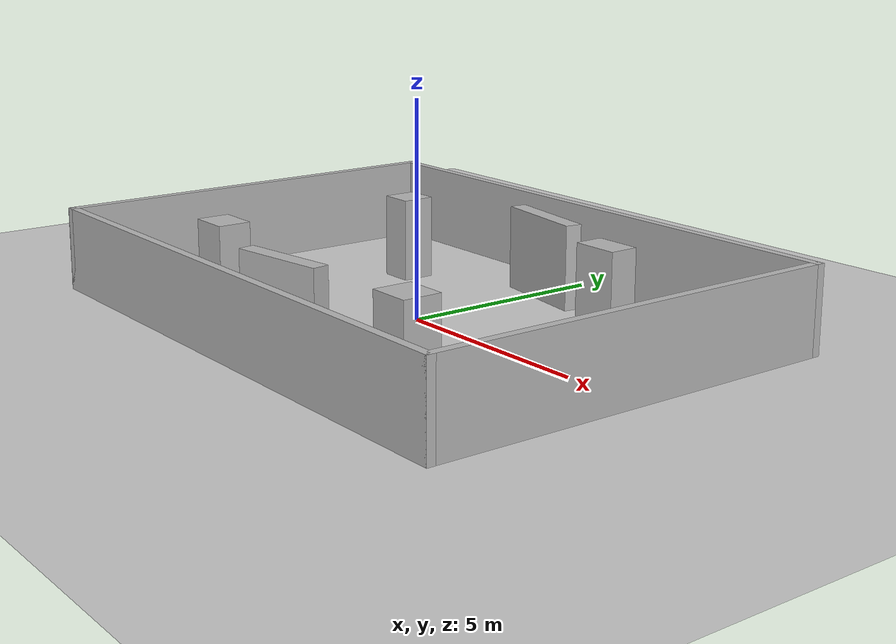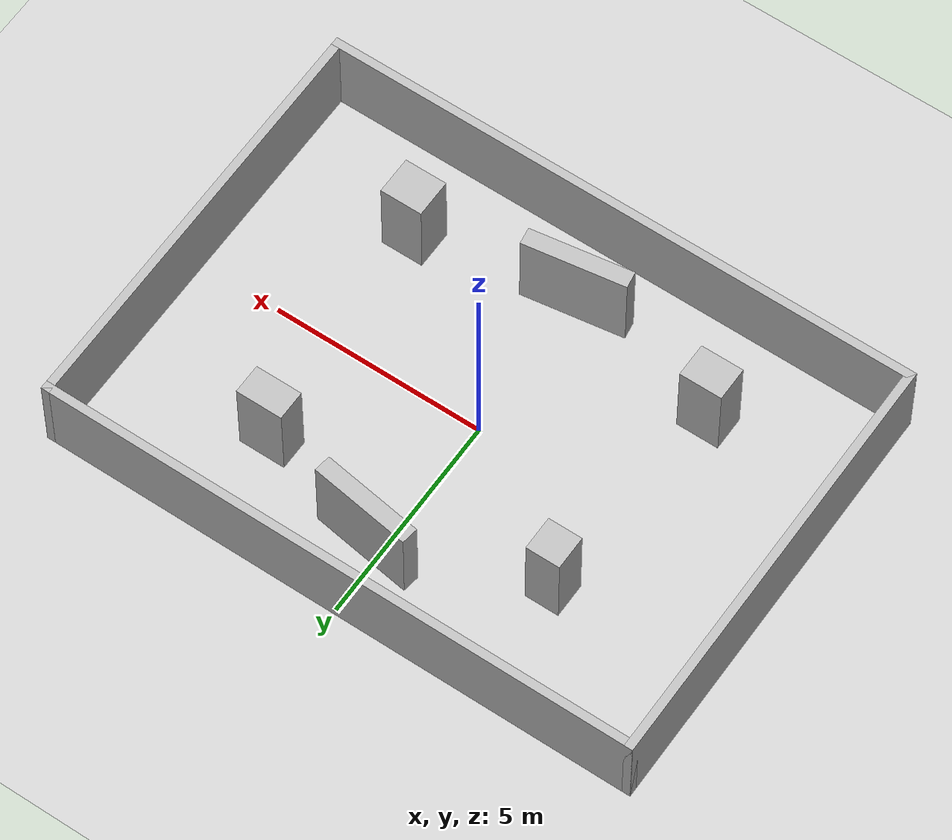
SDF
<sdf version='1.7'>
  <world name='mr3_confirmation_open'>
    <!-- mr3_box_layouts_v1; layout_seed=1103; eval-only. -->
    <plugin name='gazebo_ros_state' filename='libgazebo_ros_state.so'>
      <ros><namespace>/gazebo</namespace></ros><update_rate>10.0</update_rate>
    </plugin>
    <include><uri>model://sun</uri></include>
    <include><uri>model://ground_plane</uri></include>
    <gravity>0 0 -9.8</gravity><physics type='ode'>
      <max_step_size>0.001</max_step_size><real_time_factor>1</real_time_factor>
      <real_time_update_rate>1000</real_time_update_rate></physics>
    <model name='task_geometry'><static>true</static><link name='boxes'>
      <collision name='north'><pose>0.000000 5.000000 1 0 0 0.000000</pose>
        <geometry><box><size>14.200000 0.200000 2</size></box></geometry></collision>
      <visual name='north_visual'><pose>0.000000 5.000000 1 0 0 0.000000</pose>
        <geometry><box><size>14.200000 0.200000 2</size></box></geometry></visual>
      <collision name='south'><pose>0.000000 -5.000000 1 0 0 0.000000</pose>
        <geometry><box><size>14.200000 0.200000 2</size></box></geometry></collision>
      <visual name='south_visual'><pose>0.000000 -5.000000 1 0 0 0.000000</pose>
        <geometry><box><size>14.200000 0.200000 2</size></box></geometry></visual>
      <collision name='east'><pose>7.000000 0.000000 1 0 0 0.000000</pose>
        <geometry><box><size>0.200000 10.200000 2</size></box></geometry></collision>
      <visual name='east_visual'><pose>7.000000 0.000000 1 0 0 0.000000</pose>
        <geometry><box><size>0.200000 10.200000 2</size></box></geometry></visual>
      <collision name='west'><pose>-7.000000 0.000000 1 0 0 0.000000</pose>
        <geometry><box><size>0.200000 10.200000 2</size></box></geometry></collision>
      <visual name='west_visual'><pose>-7.000000 0.000000 1 0 0 0.000000</pose>
        <geometry><box><size>0.200000 10.200000 2</size></box></geometry></visual>
      <collision name='island_0'><pose>-3.700000 -2.800000 1 0 0 0.000000</pose>
        <geometry><box><size>1.000000 0.800000 2</size></box></geometry></collision>
      <visual name='island_0_visual'><pose>-3.700000 -2.800000 1 0 0 0.000000</pose>
        <geometry><box><size>1.000000 0.800000 2</size></box></geometry></visual>
      <collision name='island_1'><pose>-3.300000 2.200000 1 0 0 0.000000</pose>
        <geometry><box><size>0.800000 0.800000 2</size></box></geometry></collision>
      <visual name='island_1_visual'><pose>-3.300000 2.200000 1 0 0 0.000000</pose>
        <geometry><box><size>0.800000 0.800000 2</size></box></geometry></visual>
      <collision name='island_2'><pose>3.700000 -3.000000 1 0 0 0.000000</pose>
        <geometry><box><size>1.000000 0.900000 2</size></box></geometry></collision>
      <visual name='island_2_visual'><pose>3.700000 -3.000000 1 0 0 0.000000</pose>
        <geometry><box><size>1.000000 0.900000 2</size></box></geometry></visual>
      <collision name='island_3'><pose>3.300000 2.600000 1 0 0 0.000000</pose>
        <geometry><box><size>1.100000 0.700000 2</size></box></geometry></collision>
      <visual name='island_3_visual'><pose>3.300000 2.600000 1 0 0 0.000000</pose>
        <geometry><box><size>1.100000 0.700000 2</size></box></geometry></visual>
      <collision name='north_bar'><pose>0.300000 3.500000 1 0 0 -0.150000</pose>
        <geometry><box><size>2.400000 0.400000 2</size></box></geometry></collision>
      <visual name='north_bar_visual'><pose>0.300000 3.500000 1 0 0 -0.150000</pose>
        <geometry><box><size>2.400000 0.400000 2</size></box></geometry></visual>
      <collision name='south_bar'><pose>0.000000 -3.500000 1 0 0 0.150000</pose>
        <geometry><box><size>2.400000 0.400000 2</size></box></geometry></collision>
      <visual name='south_bar_visual'><pose>0.000000 -3.500000 1 0 0 0.150000</pose>
        <geometry><box><size>2.400000 0.400000 2</size></box></geometry></visual>
    </link></model>
  </world>
</sdf>
